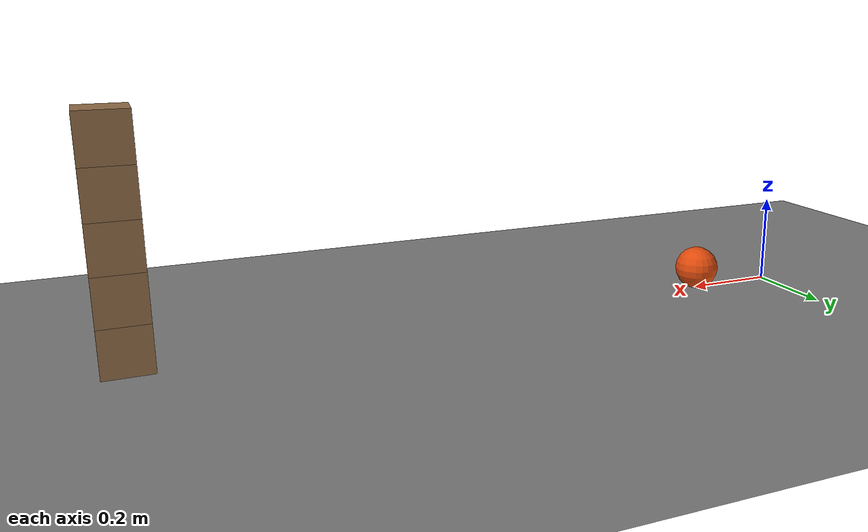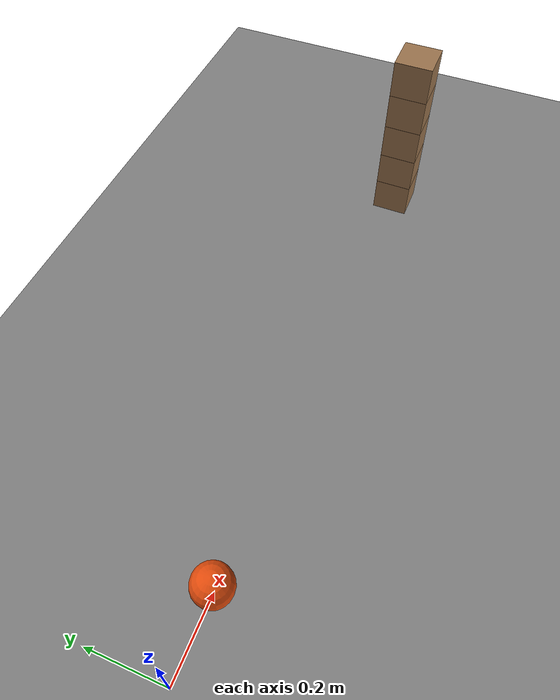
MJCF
<mujoco model="five_block_stack_knocked_from_below">
  <compiler angle="radian"/>
  <option timestep="0.002"/>
  <worldbody>
    <geom name="floor" type="plane" size="6 6 0.1" friction="0.8 0.005 0.002"/>
    <body name="block1" pos="1.5 0 0.05">
      <freejoint/>
      <geom name="block1" type="box" pos="0 0 0" size="0.05 0.05 0.05" mass="0.2" friction="0.6 0.005 0.0001" rgba="0.6 0.45 0.3 1"/>
    </body>
    <body name="block2" pos="1.5 0 0.15">
      <freejoint/>
      <geom name="block2" type="box" pos="0 0 0" size="0.05 0.05 0.05" mass="0.2" friction="0.6 0.005 0.0001" rgba="0.6 0.45 0.3 1"/>
    </body>
    <body name="block3" pos="1.5 0 0.25">
      <freejoint/>
      <geom name="block3" type="box" pos="0 0 0" size="0.05 0.05 0.05" mass="0.2" friction="0.6 0.005 0.0001" rgba="0.6 0.45 0.3 1"/>
    </body>
    <body name="block4" pos="1.5 0 0.35">
      <freejoint/>
      <geom name="block4" type="box" pos="0 0 0" size="0.05 0.05 0.05" mass="0.2" friction="0.6 0.005 0.0001" rgba="0.6 0.45 0.3 1"/>
    </body>
    <body name="block5" pos="1.5 0 0.45">
      <freejoint/>
      <geom name="block5" type="box" pos="0 0 0" size="0.05 0.05 0.05" mass="0.2" friction="0.6 0.005 0.0001" rgba="0.6 0.45 0.3 1"/>
    </body>
    <body name="pusher ball" pos="0.2 0 0.05">
      <freejoint/>
      <geom name="pusher ball" type="sphere" pos="0 0 0" size="0.05" mass="2" condim="6" friction="0.8 0.01 0.002" solref="0.01 1" rgba="0.9 0.3 0.05 1"/>
    </body>
  </worldbody>
  <keyframe>
    <key name="start" qpos="1.5 0 0.05 1 0 0 0 1.5 0 0.15 1 0 0 0 1.5 0 0.25 1 0 0 0 1.5 0 0.35 1 0 0 0 1.5 0 0.45 1 0 0 0 0.2 0 0.05 1 0 0 0" qvel="0 0 0 0 0 0 0 0 0 0 0 0 0 0 0 0 0 0 0 0 0 0 0 0 0 0 0 0 0 0 1.5 0 0 0 0 0"/>
  </keyframe>
</mujoco>
